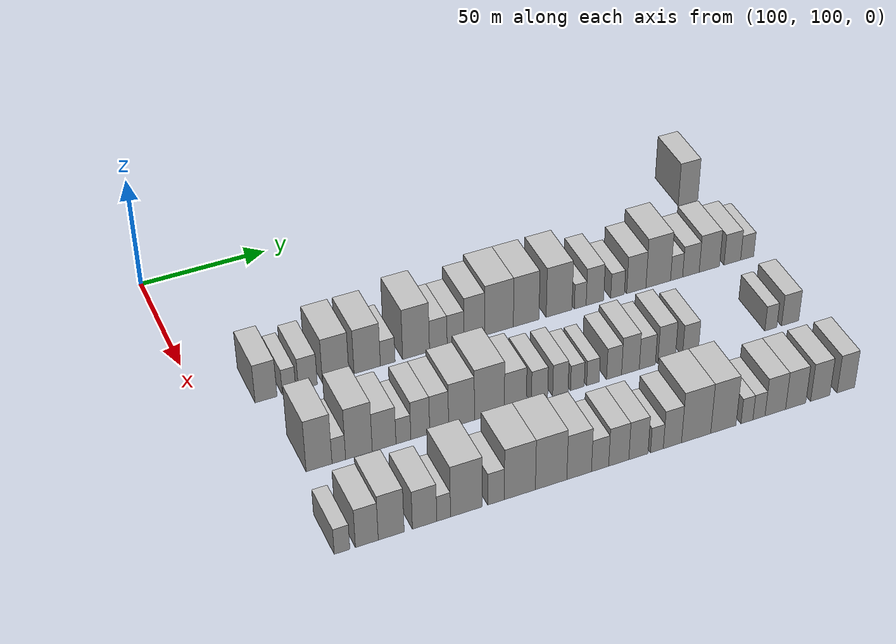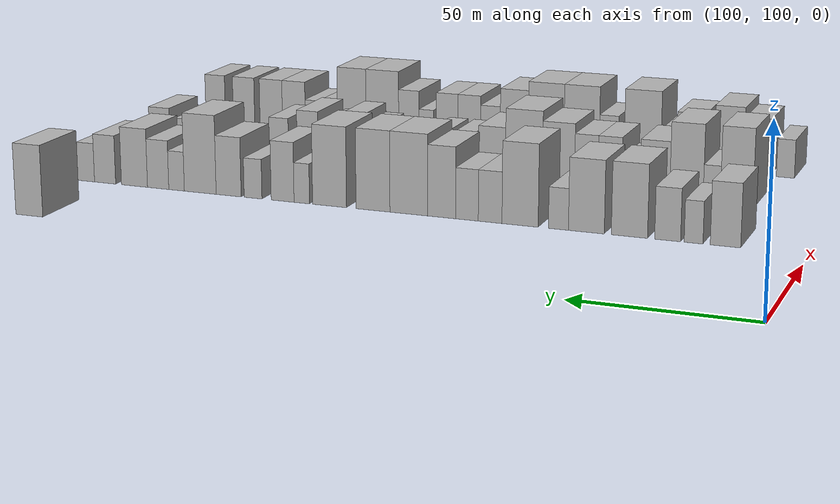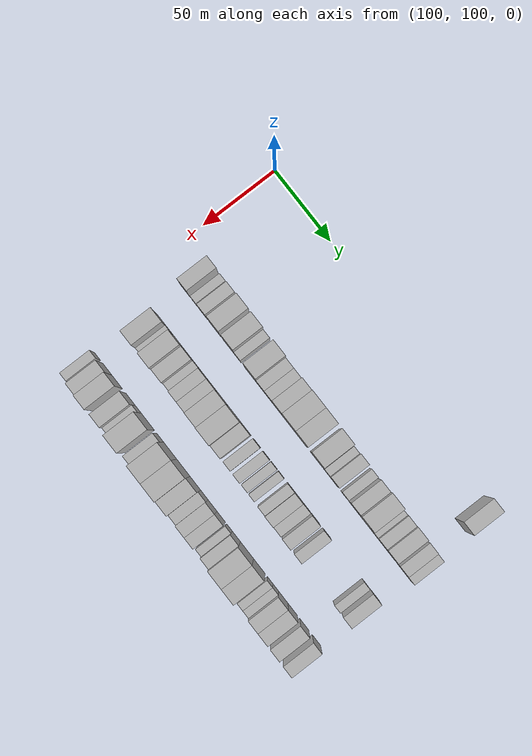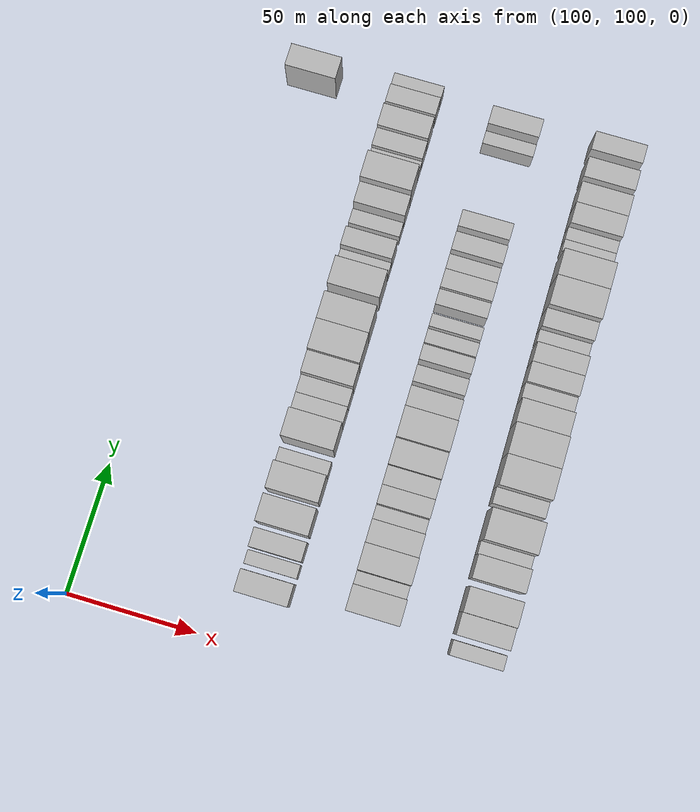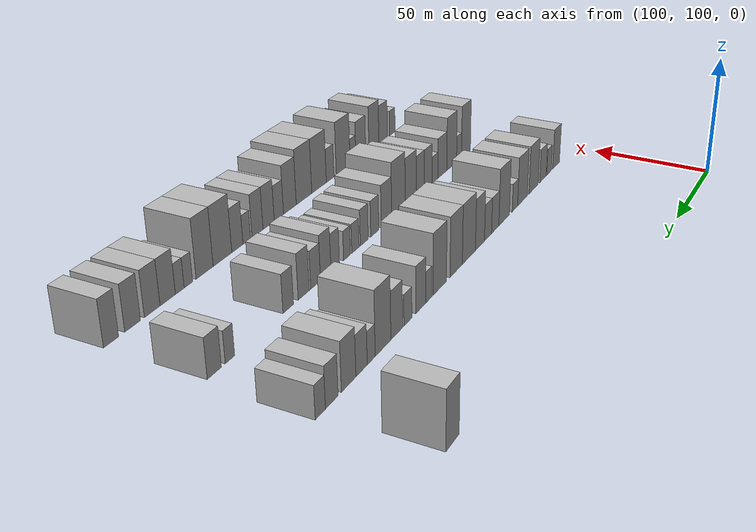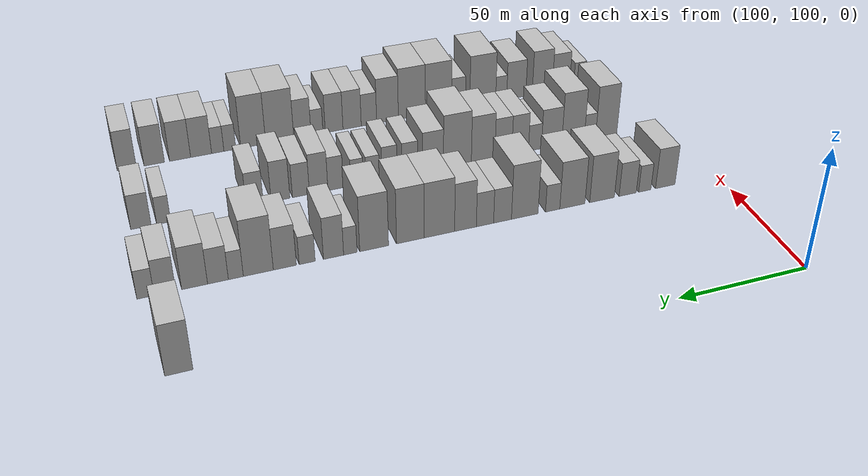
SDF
<sdf version="1.6">
 <world name="default">
  <model name="building_387">
   <static>1</static>
   <pose>130.0000 315.8220 0 0.000000 0.000000 0.000000</pose>
   <link name="link">
    <pose>0 0 10.50 0 0 0</pose>
    <collision name="collision"><geometry><box><size>20.0000 8.8836 21.0000</size></box></geometry></collision>
    <visual name="visual">
     <cast_shadows>0</cast_shadows>
     <geometry><box><size>20.0000 8.8836 21.0000</size></box></geometry>
     <material>
      <script>
       <uri>model://HANNAS_wall/materials/scripts</uri>
       <uri>model://HANNAS_wall/materials/textures</uri>
       <name>vrc/HANNAS_wall</name>
      </script>
     </material>
    </visual>
   </link>
  </model>
  <model name="building_497">
   <static>1</static>
   <pose>170.0000 122.8603 0 0.000000 0.000000 0.000000</pose>
   <link name="link">
    <pose>0 0 9.00 0 0 0</pose>
    <collision name="collision"><geometry><box><size>20.0000 8.3704 18.0000</size></box></geometry></collision>
    <visual name="visual">
     <cast_shadows>0</cast_shadows>
     <geometry><box><size>20.0000 8.3704 18.0000</size></box></geometry>
     <material>
      <script>
       <uri>model://HANNAS_wall/materials/scripts</uri>
       <uri>model://HANNAS_wall/materials/textures</uri>
       <name>vrc/HANNAS_wall</name>
      </script>
     </material>
    </visual>
   </link>
  </model>
  <model name="building_498">
   <static>1</static>
   <pose>170.0000 131.6561 0 0.000000 0.000000 0.000000</pose>
   <link name="link">
    <pose>0 0 6.00 0 0 0</pose>
    <collision name="collision"><geometry><box><size>20.0000 5.2213 12.0000</size></box></geometry></collision>
    <visual name="visual">
     <cast_shadows>0</cast_shadows>
     <geometry><box><size>20.0000 5.2213 12.0000</size></box></geometry>
     <material>
      <script>
       <uri>model://HANNAS_wall/materials/scripts</uri>
       <uri>model://HANNAS_wall/materials/textures</uri>
       <name>vrc/HANNAS_wall</name>
      </script>
     </material>
    </visual>
   </link>
  </model>
  <model name="building_499">
   <static>1</static>
   <pose>170.0000 138.8986 0 0.000000 0.000000 0.000000</pose>
   <link name="link">
    <pose>0 0 7.50 0 0 0</pose>
    <collision name="collision"><geometry><box><size>20.0000 7.2638 15.0000</size></box></geometry></collision>
    <visual name="visual">
     <cast_shadows>0</cast_shadows>
     <geometry><box><size>20.0000 7.2638 15.0000</size></box></geometry>
     <material>
      <script>
       <uri>model://HANNAS_wall/materials/scripts</uri>
       <uri>model://HANNAS_wall/materials/textures</uri>
       <name>vrc/HANNAS_wall</name>
      </script>
     </material>
    </visual>
   </link>
  </model>
  <model name="building_500">
   <static>1</static>
   <pose>170.0000 149.6772 0 0.000000 0.000000 0.000000</pose>
   <link name="link">
    <pose>0 0 10.50 0 0 0</pose>
    <collision name="collision"><geometry><box><size>20.0000 10.2934 21.0000</size></box></geometry></collision>
    <visual name="visual">
     <cast_shadows>0</cast_shadows>
     <geometry><box><size>20.0000 10.2934 21.0000</size></box></geometry>
     <material>
      <script>
       <uri>model://HANNAS_wall/materials/scripts</uri>
       <uri>model://HANNAS_wall/materials/textures</uri>
       <name>vrc/HANNAS_wall</name>
      </script>
     </material>
    </visual>
   </link>
  </model>
  <model name="building_501">
   <static>1</static>
   <pose>170.0000 161.9963 0 0.000000 0.000000 0.000000</pose>
   <link name="link">
    <pose>0 0 10.50 0 0 0</pose>
    <collision name="collision"><geometry><box><size>20.0000 10.3447 21.0000</size></box></geometry></collision>
    <visual name="visual">
     <cast_shadows>0</cast_shadows>
     <geometry><box><size>20.0000 10.3447 21.0000</size></box></geometry>
     <material>
      <script>
       <uri>model://HANNAS_wall/materials/scripts</uri>
       <uri>model://HANNAS_wall/materials/textures</uri>
       <name>vrc/HANNAS_wall</name>
      </script>
     </material>
    </visual>
   </link>
  </model>
  <model name="building_502">
   <static>1</static>
   <pose>170.0000 170.0825 0 0.000000 0.000000 0.000000</pose>
   <link name="link">
    <pose>0 0 6.00 0 0 0</pose>
    <collision name="collision"><geometry><box><size>20.0000 5.8277 12.0000</size></box></geometry></collision>
    <visual name="visual">
     <cast_shadows>0</cast_shadows>
     <geometry><box><size>20.0000 5.8277 12.0000</size></box></geometry>
     <material>
      <script>
       <uri>model://HANNAS_wall/materials/scripts</uri>
       <uri>model://HANNAS_wall/materials/textures</uri>
       <name>vrc/HANNAS_wall</name>
      </script>
     </material>
    </visual>
   </link>
  </model>
  <model name="building_503">
   <static>1</static>
   <pose>170.0000 181.3451 0 0.000000 0.000000 0.000000</pose>
   <link name="link">
    <pose>0 0 12.00 0 0 0</pose>
    <collision name="collision"><geometry><box><size>20.0000 10.6977 24.0000</size></box></geometry></collision>
    <visual name="visual">
     <cast_shadows>0</cast_shadows>
     <geometry><box><size>20.0000 10.6977 24.0000</size></box></geometry>
     <material>
      <script>
       <uri>model://HANNAS_wall/materials/scripts</uri>
       <uri>model://HANNAS_wall/materials/textures</uri>
       <name>vrc/HANNAS_wall</name>
      </script>
     </material>
    </visual>
   </link>
  </model>
  <model name="building_504">
   <static>1</static>
   <pose>170.0000 190.2425 0 0.000000 0.000000 0.000000</pose>
   <link name="link">
    <pose>0 0 7.50 0 0 0</pose>
    <collision name="collision"><geometry><box><size>20.0000 7.0971 15.0000</size></box></geometry></collision>
    <visual name="visual">
     <cast_shadows>0</cast_shadows>
     <geometry><box><size>20.0000 7.0971 15.0000</size></box></geometry>
     <material>
      <script>
       <uri>model://HANNAS_wall/materials/scripts</uri>
       <uri>model://HANNAS_wall/materials/textures</uri>
       <name>vrc/HANNAS_wall</name>
      </script>
     </material>
    </visual>
   </link>
  </model>
  <model name="building_505">
   <static>1</static>
   <pose>170.0000 197.1912 0 0.000000 0.000000 0.000000</pose>
   <link name="link">
    <pose>0 0 7.50 0 0 0</pose>
    <collision name="collision"><geometry><box><size>20.0000 6.8003 15.0000</size></box></geometry></collision>
    <visual name="visual">
     <cast_shadows>0</cast_shadows>
     <geometry><box><size>20.0000 6.8003 15.0000</size></box></geometry>
     <material>
      <script>
       <uri>model://HANNAS_wall/materials/scripts</uri>
       <uri>model://HANNAS_wall/materials/textures</uri>
       <name>vrc/HANNAS_wall</name>
      </script>
     </material>
    </visual>
   </link>
  </model>
  <model name="building_506">
   <static>1</static>
   <pose>170.0000 204.8311 0 0.000000 0.000000 0.000000</pose>
   <link name="link">
    <pose>0 0 10.50 0 0 0</pose>
    <collision name="collision"><geometry><box><size>20.0000 8.4793 21.0000</size></box></geometry></collision>
    <visual name="visual">
     <cast_shadows>0</cast_shadows>
     <geometry><box><size>20.0000 8.4793 21.0000</size></box></geometry>
     <material>
      <script>
       <uri>model://HANNAS_wall/materials/scripts</uri>
       <uri>model://HANNAS_wall/materials/textures</uri>
       <name>vrc/HANNAS_wall</name>
      </script>
     </material>
    </visual>
   </link>
  </model>
  <model name="building_507">
   <static>1</static>
   <pose>170.0000 214.9065 0 0.000000 0.000000 0.000000</pose>
   <link name="link">
    <pose>0 0 12.00 0 0 0</pose>
    <collision name="collision"><geometry><box><size>20.0000 11.6716 24.0000</size></box></geometry></collision>
    <visual name="visual">
     <cast_shadows>0</cast_shadows>
     <geometry><box><size>20.0000 11.6716 24.0000</size></box></geometry>
     <material>
      <script>
       <uri>model://HANNAS_wall/materials/scripts</uri>
       <uri>model://HANNAS_wall/materials/textures</uri>
       <name>vrc/HANNAS_wall</name>
      </script>
     </material>
    </visual>
   </link>
  </model>
  <model name="building_508">
   <static>1</static>
   <pose>170.0000 226.0292 0 0.000000 0.000000 0.000000</pose>
   <link name="link">
    <pose>0 0 12.00 0 0 0</pose>
    <collision name="collision"><geometry><box><size>20.0000 10.5738 24.0000</size></box></geometry></collision>
    <visual name="visual">
     <cast_shadows>0</cast_shadows>
     <geometry><box><size>20.0000 10.5738 24.0000</size></box></geometry>
     <material>
      <script>
       <uri>model://HANNAS_wall/materials/scripts</uri>
       <uri>model://HANNAS_wall/materials/textures</uri>
       <name>vrc/HANNAS_wall</name>
      </script>
     </material>
    </visual>
   </link>
  </model>
  <model name="building_509">
   <static>1</static>
   <pose>170.0000 239.6942 0 0.000000 0.000000 0.000000</pose>
   <link name="link">
    <pose>0 0 12.00 0 0 0</pose>
    <collision name="collision"><geometry><box><size>20.0000 10.7561 24.0000</size></box></geometry></collision>
    <visual name="visual">
     <cast_shadows>0</cast_shadows>
     <geometry><box><size>20.0000 10.7561 24.0000</size></box></geometry>
     <material>
      <script>
       <uri>model://HANNAS_wall/materials/scripts</uri>
       <uri>model://HANNAS_wall/materials/textures</uri>
       <name>vrc/HANNAS_wall</name>
      </script>
     </material>
    </visual>
   </link>
  </model>
  <model name="building_510">
   <static>1</static>
   <pose>170.0000 248.5505 0 0.000000 0.000000 0.000000</pose>
   <link name="link">
    <pose>0 0 6.00 0 0 0</pose>
    <collision name="collision"><geometry><box><size>20.0000 4.9565 12.0000</size></box></geometry></collision>
    <visual name="visual">
     <cast_shadows>0</cast_shadows>
     <geometry><box><size>20.0000 4.9565 12.0000</size></box></geometry>
     <material>
      <script>
       <uri>model://HANNAS_wall/materials/scripts</uri>
       <uri>model://HANNAS_wall/materials/textures</uri>
       <name>vrc/HANNAS_wall</name>
      </script>
     </material>
    </visual>
   </link>
  </model>
  <model name="building_511">
   <static>1</static>
   <pose>170.0000 254.7235 0 0.000000 0.000000 0.000000</pose>
   <link name="link">
    <pose>0 0 9.00 0 0 0</pose>
    <collision name="collision"><geometry><box><size>20.0000 7.3895 18.0000</size></box></geometry></collision>
    <visual name="visual">
     <cast_shadows>0</cast_shadows>
     <geometry><box><size>20.0000 7.3895 18.0000</size></box></geometry>
     <material>
      <script>
       <uri>model://HANNAS_wall/materials/scripts</uri>
       <uri>model://HANNAS_wall/materials/textures</uri>
       <name>vrc/HANNAS_wall</name>
      </script>
     </material>
    </visual>
   </link>
  </model>
  <model name="building_512">
   <static>1</static>
   <pose>170.0000 264.3219 0 0.000000 0.000000 0.000000</pose>
   <link name="link">
    <pose>0 0 6.00 0 0 0</pose>
    <collision name="collision"><geometry><box><size>20.0000 5.8072 12.0000</size></box></geometry></collision>
    <visual name="visual">
     <cast_shadows>0</cast_shadows>
     <geometry><box><size>20.0000 5.8072 12.0000</size></box></geometry>
     <material>
      <script>
       <uri>model://HANNAS_wall/materials/scripts</uri>
       <uri>model://HANNAS_wall/materials/textures</uri>
       <name>vrc/HANNAS_wall</name>
      </script>
     </material>
    </visual>
   </link>
  </model>
  <model name="building_513">
   <static>1</static>
   <pose>170.0000 272.3450 0 0.000000 0.000000 0.000000</pose>
   <link name="link">
    <pose>0 0 9.00 0 0 0</pose>
    <collision name="collision"><geometry><box><size>20.0000 8.2391 18.0000</size></box></geometry></collision>
    <visual name="visual">
     <cast_shadows>0</cast_shadows>
     <geometry><box><size>20.0000 8.2391 18.0000</size></box></geometry>
     <material>
      <script>
       <uri>model://HANNAS_wall/materials/scripts</uri>
       <uri>model://HANNAS_wall/materials/textures</uri>
       <name>vrc/HANNAS_wall</name>
      </script>
     </material>
    </visual>
   </link>
  </model>
  <model name="building_514">
   <static>1</static>
   <pose>170.0000 281.7713 0 0.000000 0.000000 0.000000</pose>
   <link name="link">
    <pose>0 0 12.00 0 0 0</pose>
    <collision name="collision"><geometry><box><size>20.0000 10.6135 24.0000</size></box></geometry></collision>
    <visual name="visual">
     <cast_shadows>0</cast_shadows>
     <geometry><box><size>20.0000 10.6135 24.0000</size></box></geometry>
     <material>
      <script>
       <uri>model://HANNAS_wall/materials/scripts</uri>
       <uri>model://HANNAS_wall/materials/textures</uri>
       <name>vrc/HANNAS_wall</name>
      </script>
     </material>
    </visual>
   </link>
  </model>
  <model name="building_515">
   <static>1</static>
   <pose>170.0000 289.7008 0 0.000000 0.000000 0.000000</pose>
   <link name="link">
    <pose>0 0 6.00 0 0 0</pose>
    <collision name="collision"><geometry><box><size>20.0000 5.2456 12.0000</size></box></geometry></collision>
    <visual name="visual">
     <cast_shadows>0</cast_shadows>
     <geometry><box><size>20.0000 5.2456 12.0000</size></box></geometry>
     <material>
      <script>
       <uri>model://HANNAS_wall/materials/scripts</uri>
       <uri>model://HANNAS_wall/materials/textures</uri>
       <name>vrc/HANNAS_wall</name>
      </script>
     </material>
    </visual>
   </link>
  </model>
  <model name="building_516">
   <static>1</static>
   <pose>170.0000 295.9312 0 0.000000 0.000000 0.000000</pose>
   <link name="link">
    <pose>0 0 7.50 0 0 0</pose>
    <collision name="collision"><geometry><box><size>20.0000 7.2151 15.0000</size></box></geometry></collision>
    <visual name="visual">
     <cast_shadows>0</cast_shadows>
     <geometry><box><size>20.0000 7.2151 15.0000</size></box></geometry>
     <material>
      <script>
       <uri>model://HANNAS_wall/materials/scripts</uri>
       <uri>model://HANNAS_wall/materials/textures</uri>
       <name>vrc/HANNAS_wall</name>
      </script>
     </material>
    </visual>
   </link>
  </model>
  <model name="building_517">
   <static>1</static>
   <pose>170.0000 303.9941 0 0.000000 0.000000 0.000000</pose>
   <link name="link">
    <pose>0 0 9.00 0 0 0</pose>
    <collision name="collision"><geometry><box><size>20.0000 8.9107 18.0000</size></box></geometry></collision>
    <visual name="visual">
     <cast_shadows>0</cast_shadows>
     <geometry><box><size>20.0000 8.9107 18.0000</size></box></geometry>
     <material>
      <script>
       <uri>model://HANNAS_wall/materials/scripts</uri>
       <uri>model://HANNAS_wall/materials/textures</uri>
       <name>vrc/HANNAS_wall</name>
      </script>
     </material>
    </visual>
   </link>
  </model>
  <model name="building_518">
   <static>1</static>
   <pose>170.0000 314.1108 0 0.000000 0.000000 0.000000</pose>
   <link name="link">
    <pose>0 0 7.50 0 0 0</pose>
    <collision name="collision"><geometry><box><size>20.0000 7.3228 15.0000</size></box></geometry></collision>
    <visual name="visual">
     <cast_shadows>0</cast_shadows>
     <geometry><box><size>20.0000 7.3228 15.0000</size></box></geometry>
     <material>
      <script>
       <uri>model://HANNAS_wall/materials/scripts</uri>
       <uri>model://HANNAS_wall/materials/textures</uri>
       <name>vrc/HANNAS_wall</name>
      </script>
     </material>
    </visual>
   </link>
  </model>
  <model name="building_519">
   <static>1</static>
   <pose>170.0000 320.6827 0 0.000000 0.000000 0.000000</pose>
   <link name="link">
    <pose>0 0 6.00 0 0 0</pose>
    <collision name="collision"><geometry><box><size>20.0000 5.8210 12.0000</size></box></geometry></collision>
    <visual name="visual">
     <cast_shadows>0</cast_shadows>
     <geometry><box><size>20.0000 5.8210 12.0000</size></box></geometry>
     <material>
      <script>
       <uri>model://HANNAS_wall/materials/scripts</uri>
       <uri>model://HANNAS_wall/materials/textures</uri>
       <name>vrc/HANNAS_wall</name>
      </script>
     </material>
    </visual>
   </link>
  </model>
  <model name="building_635">
   <static>1</static>
   <pose>210.0000 128.4383 0 0.000000 0.000000 0.000000</pose>
   <link name="link">
    <pose>0 0 12.00 0 0 0</pose>
    <collision name="collision"><geometry><box><size>20.0000 9.6128 24.0000</size></box></geometry></collision>
    <visual name="visual">
     <cast_shadows>0</cast_shadows>
     <geometry><box><size>20.0000 9.6128 24.0000</size></box></geometry>
     <material>
      <script>
       <uri>model://HANNAS_wall/materials/scripts</uri>
       <uri>model://HANNAS_wall/materials/textures</uri>
       <name>vrc/HANNAS_wall</name>
      </script>
     </material>
    </visual>
   </link>
  </model>
  <model name="building_636">
   <static>1</static>
   <pose>210.0000 135.7824 0 0.000000 0.000000 0.000000</pose>
   <link name="link">
    <pose>0 0 6.00 0 0 0</pose>
    <collision name="collision"><geometry><box><size>20.0000 5.0754 12.0000</size></box></geometry></collision>
    <visual name="visual">
     <cast_shadows>0</cast_shadows>
     <geometry><box><size>20.0000 5.0754 12.0000</size></box></geometry>
     <material>
      <script>
       <uri>model://HANNAS_wall/materials/scripts</uri>
       <uri>model://HANNAS_wall/materials/textures</uri>
       <name>vrc/HANNAS_wall</name>
      </script>
     </material>
    </visual>
   </link>
  </model>
  <model name="building_637">
   <static>1</static>
   <pose>210.0000 143.3245 0 0.000000 0.000000 0.000000</pose>
   <link name="link">
    <pose>0 0 12.00 0 0 0</pose>
    <collision name="collision"><geometry><box><size>20.0000 10.0088 24.0000</size></box></geometry></collision>
    <visual name="visual">
     <cast_shadows>0</cast_shadows>
     <geometry><box><size>20.0000 10.0088 24.0000</size></box></geometry>
     <material>
      <script>
       <uri>model://HANNAS_wall/materials/scripts</uri>
       <uri>model://HANNAS_wall/materials/textures</uri>
       <name>vrc/HANNAS_wall</name>
      </script>
     </material>
    </visual>
   </link>
  </model>
  <model name="building_638">
   <static>1</static>
   <pose>210.0000 152.8136 0 0.000000 0.000000 0.000000</pose>
   <link name="link">
    <pose>0 0 9.00 0 0 0</pose>
    <collision name="collision"><geometry><box><size>20.0000 8.9693 18.0000</size></box></geometry></collision>
    <visual name="visual">
     <cast_shadows>0</cast_shadows>
     <geometry><box><size>20.0000 8.9693 18.0000</size></box></geometry>
     <material>
      <script>
       <uri>model://HANNAS_wall/materials/scripts</uri>
       <uri>model://HANNAS_wall/materials/textures</uri>
       <name>vrc/HANNAS_wall</name>
      </script>
     </material>
    </visual>
   </link>
  </model>
  <model name="building_639">
   <static>1</static>
   <pose>210.0000 160.1280 0 0.000000 0.000000 0.000000</pose>
   <link name="link">
    <pose>0 0 6.00 0 0 0</pose>
    <collision name="collision"><geometry><box><size>20.0000 5.6595 12.0000</size></box></geometry></collision>
    <visual name="visual">
     <cast_shadows>0</cast_shadows>
     <geometry><box><size>20.0000 5.6595 12.0000</size></box></geometry>
     <material>
      <script>
       <uri>model://HANNAS_wall/materials/scripts</uri>
       <uri>model://HANNAS_wall/materials/textures</uri>
       <name>vrc/HANNAS_wall</name>
      </script>
     </material>
    </visual>
   </link>
  </model>
  <model name="building_640">
   <static>1</static>
   <pose>210.0000 166.5603 0 0.000000 0.000000 0.000000</pose>
   <link name="link">
    <pose>0 0 9.00 0 0 0</pose>
    <collision name="collision"><geometry><box><size>20.0000 7.2052 18.0000</size></box></geometry></collision>
    <visual name="visual">
     <cast_shadows>0</cast_shadows>
     <geometry><box><size>20.0000 7.2052 18.0000</size></box></geometry>
     <material>
      <script>
       <uri>model://HANNAS_wall/materials/scripts</uri>
       <uri>model://HANNAS_wall/materials/textures</uri>
       <name>vrc/HANNAS_wall</name>
      </script>
     </material>
    </visual>
   </link>
  </model>
  <model name="building_641">
   <static>1</static>
   <pose>210.0000 173.8023 0 0.000000 0.000000 0.000000</pose>
   <link name="link">
    <pose>0 0 9.00 0 0 0</pose>
    <collision name="collision"><geometry><box><size>20.0000 7.2788 18.0000</size></box></geometry></collision>
    <visual name="visual">
     <cast_shadows>0</cast_shadows>
     <geometry><box><size>20.0000 7.2788 18.0000</size></box></geometry>
     <material>
      <script>
       <uri>model://HANNAS_wall/materials/scripts</uri>
       <uri>model://HANNAS_wall/materials/textures</uri>
       <name>vrc/HANNAS_wall</name>
      </script>
     </material>
    </visual>
   </link>
  </model>
  <model name="building_642">
   <static>1</static>
   <pose>210.0000 182.4457 0 0.000000 0.000000 0.000000</pose>
   <link name="link">
    <pose>0 0 10.50 0 0 0</pose>
    <collision name="collision"><geometry><box><size>20.0000 10.0079 21.0000</size></box></geometry></collision>
    <visual name="visual">
     <cast_shadows>0</cast_shadows>
     <geometry><box><size>20.0000 10.0079 21.0000</size></box></geometry>
     <material>
      <script>
       <uri>model://HANNAS_wall/materials/scripts</uri>
       <uri>model://HANNAS_wall/materials/textures</uri>
       <name>vrc/HANNAS_wall</name>
      </script>
     </material>
    </visual>
   </link>
  </model>
  <model name="building_643">
   <static>1</static>
   <pose>210.0000 193.3110 0 0.000000 0.000000 0.000000</pose>
   <link name="link">
    <pose>0 0 12.00 0 0 0</pose>
    <collision name="collision"><geometry><box><size>20.0000 11.7228 24.0000</size></box></geometry></collision>
    <visual name="visual">
     <cast_shadows>0</cast_shadows>
     <geometry><box><size>20.0000 11.7228 24.0000</size></box></geometry>
     <material>
      <script>
       <uri>model://HANNAS_wall/materials/scripts</uri>
       <uri>model://HANNAS_wall/materials/textures</uri>
       <name>vrc/HANNAS_wall</name>
      </script>
     </material>
    </visual>
   </link>
  </model>
  <model name="building_644">
   <static>1</static>
   <pose>210.0000 203.4968 0 0.000000 0.000000 0.000000</pose>
   <link name="link">
    <pose>0 0 9.00 0 0 0</pose>
    <collision name="collision"><geometry><box><size>20.0000 8.6487 18.0000</size></box></geometry></collision>
    <visual name="visual">
     <cast_shadows>0</cast_shadows>
     <geometry><box><size>20.0000 8.6487 18.0000</size></box></geometry>
     <material>
      <script>
       <uri>model://HANNAS_wall/materials/scripts</uri>
       <uri>model://HANNAS_wall/materials/textures</uri>
       <name>vrc/HANNAS_wall</name>
      </script>
     </material>
    </visual>
   </link>
  </model>
  <model name="building_645">
   <static>1</static>
   <pose>210.0000 213.0498 0 0.000000 0.000000 0.000000</pose>
   <link name="link">
    <pose>0 0 7.50 0 0 0</pose>
    <collision name="collision"><geometry><box><size>20.0000 6.4574 15.0000</size></box></geometry></collision>
    <visual name="visual">
     <cast_shadows>0</cast_shadows>
     <geometry><box><size>20.0000 6.4574 15.0000</size></box></geometry>
     <material>
      <script>
       <uri>model://HANNAS_wall/materials/scripts</uri>
       <uri>model://HANNAS_wall/materials/textures</uri>
       <name>vrc/HANNAS_wall</name>
      </script>
     </material>
    </visual>
   </link>
  </model>
  <model name="building_646">
   <static>1</static>
   <pose>210.0000 221.3531 0 0.000000 0.000000 0.000000</pose>
   <link name="link">
    <pose>0 0 7.50 0 0 0</pose>
    <collision name="collision"><geometry><box><size>20.0000 6.1493 15.0000</size></box></geometry></collision>
    <visual name="visual">
     <cast_shadows>0</cast_shadows>
     <geometry><box><size>20.0000 6.1493 15.0000</size></box></geometry>
     <material>
      <script>
       <uri>model://HANNAS_wall/materials/scripts</uri>
       <uri>model://HANNAS_wall/materials/textures</uri>
       <name>vrc/HANNAS_wall</name>
      </script>
     </material>
    </visual>
   </link>
  </model>
  <model name="building_647">
   <static>1</static>
   <pose>210.0000 228.1708 0 0.000000 0.000000 0.000000</pose>
   <link name="link">
    <pose>0 0 6.00 0 0 0</pose>
    <collision name="collision"><geometry><box><size>20.0000 5.4861 12.0000</size></box></geometry></collision>
    <visual name="visual">
     <cast_shadows>0</cast_shadows>
     <geometry><box><size>20.0000 5.4861 12.0000</size></box></geometry>
     <material>
      <script>
       <uri>model://HANNAS_wall/materials/scripts</uri>
       <uri>model://HANNAS_wall/materials/textures</uri>
       <name>vrc/HANNAS_wall</name>
      </script>
     </material>
    </visual>
   </link>
  </model>
  <model name="building_648">
   <static>1</static>
   <pose>210.0000 234.4393 0 0.000000 0.000000 0.000000</pose>
   <link name="link">
    <pose>0 0 6.00 0 0 0</pose>
    <collision name="collision"><geometry><box><size>20.0000 5.0508 12.0000</size></box></geometry></collision>
    <visual name="visual">
     <cast_shadows>0</cast_shadows>
     <geometry><box><size>20.0000 5.0508 12.0000</size></box></geometry>
     <material>
      <script>
       <uri>model://HANNAS_wall/materials/scripts</uri>
       <uri>model://HANNAS_wall/materials/textures</uri>
       <name>vrc/HANNAS_wall</name>
      </script>
     </material>
    </visual>
   </link>
  </model>
  <model name="building_649">
   <static>1</static>
   <pose>210.0000 243.0155 0 0.000000 0.000000 0.000000</pose>
   <link name="link">
    <pose>0 0 7.50 0 0 0</pose>
    <collision name="collision"><geometry><box><size>20.0000 6.1017 15.0000</size></box></geometry></collision>
    <visual name="visual">
     <cast_shadows>0</cast_shadows>
     <geometry><box><size>20.0000 6.1017 15.0000</size></box></geometry>
     <material>
      <script>
       <uri>model://HANNAS_wall/materials/scripts</uri>
       <uri>model://HANNAS_wall/materials/textures</uri>
       <name>vrc/HANNAS_wall</name>
      </script>
     </material>
    </visual>
   </link>
  </model>
  <model name="building_650">
   <static>1</static>
   <pose>210.0000 249.6984 0 0.000000 0.000000 0.000000</pose>
   <link name="link">
    <pose>0 0 9.00 0 0 0</pose>
    <collision name="collision"><geometry><box><size>20.0000 7.2640 18.0000</size></box></geometry></collision>
    <visual name="visual">
     <cast_shadows>0</cast_shadows>
     <geometry><box><size>20.0000 7.2640 18.0000</size></box></geometry>
     <material>
      <script>
       <uri>model://HANNAS_wall/materials/scripts</uri>
       <uri>model://HANNAS_wall/materials/textures</uri>
       <name>vrc/HANNAS_wall</name>
      </script>
     </material>
    </visual>
   </link>
  </model>
  <model name="building_651">
   <static>1</static>
   <pose>210.0000 256.6418 0 0.000000 0.000000 0.000000</pose>
   <link name="link">
    <pose>0 0 7.50 0 0 0</pose>
    <collision name="collision"><geometry><box><size>20.0000 6.6228 15.0000</size></box></geometry></collision>
    <visual name="visual">
     <cast_shadows>0</cast_shadows>
     <geometry><box><size>20.0000 6.6228 15.0000</size></box></geometry>
     <material>
      <script>
       <uri>model://HANNAS_wall/materials/scripts</uri>
       <uri>model://HANNAS_wall/materials/textures</uri>
       <name>vrc/HANNAS_wall</name>
      </script>
     </material>
    </visual>
   </link>
  </model>
  <model name="building_652">
   <static>1</static>
   <pose>210.0000 264.5712 0 0.000000 0.000000 0.000000</pose>
   <link name="link">
    <pose>0 0 9.00 0 0 0</pose>
    <collision name="collision"><geometry><box><size>20.0000 7.2360 18.0000</size></box></geometry></collision>
    <visual name="visual">
     <cast_shadows>0</cast_shadows>
     <geometry><box><size>20.0000 7.2360 18.0000</size></box></geometry>
     <material>
      <script>
       <uri>model://HANNAS_wall/materials/scripts</uri>
       <uri>model://HANNAS_wall/materials/textures</uri>
       <name>vrc/HANNAS_wall</name>
      </script>
     </material>
    </visual>
   </link>
  </model>
  <model name="building_653">
   <static>1</static>
   <pose>210.0000 274.4937 0 0.000000 0.000000 0.000000</pose>
   <link name="link">
    <pose>0 0 7.50 0 0 0</pose>
    <collision name="collision"><geometry><box><size>20.0000 6.6090 15.0000</size></box></geometry></collision>
    <visual name="visual">
     <cast_shadows>0</cast_shadows>
     <geometry><box><size>20.0000 6.6090 15.0000</size></box></geometry>
     <material>
      <script>
       <uri>model://HANNAS_wall/materials/scripts</uri>
       <uri>model://HANNAS_wall/materials/textures</uri>
       <name>vrc/HANNAS_wall</name>
      </script>
     </material>
    </visual>
   </link>
  </model>
  <model name="building_654">
   <static>1</static>
   <pose>210.0000 308.5311 0 0.000000 0.000000 0.000000</pose>
   <link name="link">
    <pose>0 0 6.00 0 0 0</pose>
    <collision name="collision"><geometry><box><size>20.0000 5.1553 12.0000</size></box></geometry></collision>
    <visual name="visual">
     <cast_shadows>0</cast_shadows>
     <geometry><box><size>20.0000 5.1553 12.0000</size></box></geometry>
     <material>
      <script>
       <uri>model://HANNAS_wall/materials/scripts</uri>
       <uri>model://HANNAS_wall/materials/textures</uri>
       <name>vrc/HANNAS_wall</name>
      </script>
     </material>
    </visual>
   </link>
  </model>
  <model name="building_655">
   <static>1</static>
   <pose>210.0000 316.8214 0 0.000000 0.000000 0.000000</pose>
   <link name="link">
    <pose>0 0 7.50 0 0 0</pose>
    <collision name="collision"><geometry><box><size>20.0000 7.4251 15.0000</size></box></geometry></collision>
    <visual name="visual">
     <cast_shadows>0</cast_shadows>
     <geometry><box><size>20.0000 7.4251 15.0000</size></box></geometry>
     <material>
      <script>
       <uri>model://HANNAS_wall/materials/scripts</uri>
       <uri>model://HANNAS_wall/materials/textures</uri>
       <name>vrc/HANNAS_wall</name>
      </script>
     </material>
    </visual>
   </link>
  </model>
  <model name="building_764">
   <static>1</static>
   <pose>250.0000 121.8187 0 0.000000 0.000000 0.000000</pose>
   <link name="link">
    <pose>0 0 6.00 0 0 0</pose>
    <collision name="collision"><geometry><box><size>20.0000 5.5731 12.0000</size></box></geometry></collision>
    <visual name="visual">
     <cast_shadows>0</cast_shadows>
     <geometry><box><size>20.0000 5.5731 12.0000</size></box></geometry>
     <material>
      <script>
       <uri>model://HANNAS_wall/materials/scripts</uri>
       <uri>model://HANNAS_wall/materials/textures</uri>
       <name>vrc/HANNAS_wall</name>
      </script>
     </material>
    </visual>
   </link>
  </model>
  <model name="building_765">
   <static>1</static>
   <pose>250.0000 130.7166 0 0.000000 0.000000 0.000000</pose>
   <link name="link">
    <pose>0 0 9.00 0 0 0</pose>
    <collision name="collision"><geometry><box><size>20.0000 8.2226 18.0000</size></box></geometry></collision>
    <visual name="visual">
     <cast_shadows>0</cast_shadows>
     <geometry><box><size>20.0000 8.2226 18.0000</size></box></geometry>
     <material>
      <script>
       <uri>model://HANNAS_wall/materials/scripts</uri>
       <uri>model://HANNAS_wall/materials/textures</uri>
       <name>vrc/HANNAS_wall</name>
      </script>
     </material>
    </visual>
   </link>
  </model>
  <model name="building_766">
   <static>1</static>
   <pose>250.0000 139.5265 0 0.000000 0.000000 0.000000</pose>
   <link name="link">
    <pose>0 0 10.50 0 0 0</pose>
    <collision name="collision"><geometry><box><size>20.0000 9.3973 21.0000</size></box></geometry></collision>
    <visual name="visual">
     <cast_shadows>0</cast_shadows>
     <geometry><box><size>20.0000 9.3973 21.0000</size></box></geometry>
     <material>
      <script>
       <uri>model://HANNAS_wall/materials/scripts</uri>
       <uri>model://HANNAS_wall/materials/textures</uri>
       <name>vrc/HANNAS_wall</name>
      </script>
     </material>
    </visual>
   </link>
  </model>
  <model name="building_767">
   <static>1</static>
   <pose>250.0000 151.6856 0 0.000000 0.000000 0.000000</pose>
   <link name="link">
    <pose>0 0 9.00 0 0 0</pose>
    <collision name="collision"><geometry><box><size>20.0000 8.9208 18.0000</size></box></geometry></collision>
    <visual name="visual">
     <cast_shadows>0</cast_shadows>
     <geometry><box><size>20.0000 8.9208 18.0000</size></box></geometry>
     <material>
      <script>
       <uri>model://HANNAS_wall/materials/scripts</uri>
       <uri>model://HANNAS_wall/materials/textures</uri>
       <name>vrc/HANNAS_wall</name>
      </script>
     </material>
    </visual>
   </link>
  </model>
  <model name="building_768">
   <static>1</static>
   <pose>250.0000 158.6774 0 0.000000 0.000000 0.000000</pose>
   <link name="link">
    <pose>0 0 6.00 0 0 0</pose>
    <collision name="collision"><geometry><box><size>20.0000 5.0629 12.0000</size></box></geometry></collision>
    <visual name="visual">
     <cast_shadows>0</cast_shadows>
     <geometry><box><size>20.0000 5.0629 12.0000</size></box></geometry>
     <material>
      <script>
       <uri>model://HANNAS_wall/materials/scripts</uri>
       <uri>model://HANNAS_wall/materials/textures</uri>
       <name>vrc/HANNAS_wall</name>
      </script>
     </material>
    </visual>
   </link>
  </model>
  <model name="building_769">
   <static>1</static>
   <pose>250.0000 167.1284 0 0.000000 0.000000 0.000000</pose>
   <link name="link">
    <pose>0 0 12.00 0 0 0</pose>
    <collision name="collision"><geometry><box><size>20.0000 11.8392 24.0000</size></box></geometry></collision>
    <visual name="visual">
     <cast_shadows>0</cast_shadows>
     <geometry><box><size>20.0000 11.8392 24.0000</size></box></geometry>
     <material>
      <script>
       <uri>model://HANNAS_wall/materials/scripts</uri>
       <uri>model://HANNAS_wall/materials/textures</uri>
       <name>vrc/HANNAS_wall</name>
      </script>
     </material>
    </visual>
   </link>
  </model>
  <model name="building_770">
   <static>1</static>
   <pose>250.0000 178.1547 0 0.000000 0.000000 0.000000</pose>
   <link name="link">
    <pose>0 0 7.50 0 0 0</pose>
    <collision name="collision"><geometry><box><size>20.0000 6.2134 15.0000</size></box></geometry></collision>
    <visual name="visual">
     <cast_shadows>0</cast_shadows>
     <geometry><box><size>20.0000 6.2134 15.0000</size></box></geometry>
     <material>
      <script>
       <uri>model://HANNAS_wall/materials/scripts</uri>
       <uri>model://HANNAS_wall/materials/textures</uri>
       <name>vrc/HANNAS_wall</name>
      </script>
     </material>
    </visual>
   </link>
  </model>
  <model name="building_771">
   <static>1</static>
   <pose>250.0000 187.1185 0 0.000000 0.000000 0.000000</pose>
   <link name="link">
    <pose>0 0 12.00 0 0 0</pose>
    <collision name="collision"><geometry><box><size>20.0000 11.7142 24.0000</size></box></geometry></collision>
    <visual name="visual">
     <cast_shadows>0</cast_shadows>
     <geometry><box><size>20.0000 11.7142 24.0000</size></box></geometry>
     <material>
      <script>
       <uri>model://HANNAS_wall/materials/scripts</uri>
       <uri>model://HANNAS_wall/materials/textures</uri>
       <name>vrc/HANNAS_wall</name>
      </script>
     </material>
    </visual>
   </link>
  </model>
  <model name="building_772">
   <static>1</static>
   <pose>250.0000 198.9604 0 0.000000 0.000000 0.000000</pose>
   <link name="link">
    <pose>0 0 12.00 0 0 0</pose>
    <collision name="collision"><geometry><box><size>20.0000 11.9694 24.0000</size></box></geometry></collision>
    <visual name="visual">
     <cast_shadows>0</cast_shadows>
     <geometry><box><size>20.0000 11.9694 24.0000</size></box></geometry>
     <material>
      <script>
       <uri>model://HANNAS_wall/materials/scripts</uri>
       <uri>model://HANNAS_wall/materials/textures</uri>
       <name>vrc/HANNAS_wall</name>
      </script>
     </material>
    </visual>
   </link>
  </model>
  <model name="building_773">
   <static>1</static>
   <pose>250.0000 209.6878 0 0.000000 0.000000 0.000000</pose>
   <link name="link">
    <pose>0 0 10.50 0 0 0</pose>
    <collision name="collision"><geometry><box><size>20.0000 9.4854 21.0000</size></box></geometry></collision>
    <visual name="visual">
     <cast_shadows>0</cast_shadows>
     <geometry><box><size>20.0000 9.4854 21.0000</size></box></geometry>
     <material>
      <script>
       <uri>model://HANNAS_wall/materials/scripts</uri>
       <uri>model://HANNAS_wall/materials/textures</uri>
       <name>vrc/HANNAS_wall</name>
      </script>
     </material>
    </visual>
   </link>
  </model>
  <model name="building_774">
   <static>1</static>
   <pose>250.0000 217.7660 0 0.000000 0.000000 0.000000</pose>
   <link name="link">
    <pose>0 0 7.50 0 0 0</pose>
    <collision name="collision"><geometry><box><size>20.0000 6.6710 15.0000</size></box></geometry></collision>
    <visual name="visual">
     <cast_shadows>0</cast_shadows>
     <geometry><box><size>20.0000 6.6710 15.0000</size></box></geometry>
     <material>
      <script>
       <uri>model://HANNAS_wall/materials/scripts</uri>
       <uri>model://HANNAS_wall/materials/textures</uri>
       <name>vrc/HANNAS_wall</name>
      </script>
     </material>
    </visual>
   </link>
  </model>
  <model name="building_775">
   <static>1</static>
   <pose>250.0000 225.0281 0 0.000000 0.000000 0.000000</pose>
   <link name="link">
    <pose>0 0 9.00 0 0 0</pose>
    <collision name="collision"><geometry><box><size>20.0000 7.8532 18.0000</size></box></geometry></collision>
    <visual name="visual">
     <cast_shadows>0</cast_shadows>
     <geometry><box><size>20.0000 7.8532 18.0000</size></box></geometry>
     <material>
      <script>
       <uri>model://HANNAS_wall/materials/scripts</uri>
       <uri>model://HANNAS_wall/materials/textures</uri>
       <name>vrc/HANNAS_wall</name>
      </script>
     </material>
    </visual>
   </link>
  </model>
  <model name="building_776">
   <static>1</static>
   <pose>250.0000 232.7150 0 0.000000 0.000000 0.000000</pose>
   <link name="link">
    <pose>0 0 9.00 0 0 0</pose>
    <collision name="collision"><geometry><box><size>20.0000 7.5206 18.0000</size></box></geometry></collision>
    <visual name="visual">
     <cast_shadows>0</cast_shadows>
     <geometry><box><size>20.0000 7.5206 18.0000</size></box></geometry>
     <material>
      <script>
       <uri>model://HANNAS_wall/materials/scripts</uri>
       <uri>model://HANNAS_wall/materials/textures</uri>
       <name>vrc/HANNAS_wall</name>
      </script>
     </material>
    </visual>
   </link>
  </model>
  <model name="building_777">
   <static>1</static>
   <pose>250.0000 239.9937 0 0.000000 0.000000 0.000000</pose>
   <link name="link">
    <pose>0 0 6.00 0 0 0</pose>
    <collision name="collision"><geometry><box><size>20.0000 5.0370 12.0000</size></box></geometry></collision>
    <visual name="visual">
     <cast_shadows>0</cast_shadows>
     <geometry><box><size>20.0000 5.0370 12.0000</size></box></geometry>
     <material>
      <script>
       <uri>model://HANNAS_wall/materials/scripts</uri>
       <uri>model://HANNAS_wall/materials/textures</uri>
       <name>vrc/HANNAS_wall</name>
      </script>
     </material>
    </visual>
   </link>
  </model>
  <model name="building_778">
   <static>1</static>
   <pose>250.0000 246.1237 0 0.000000 0.000000 0.000000</pose>
   <link name="link">
    <pose>0 0 9.00 0 0 0</pose>
    <collision name="collision"><geometry><box><size>20.0000 7.2230 18.0000</size></box></geometry></collision>
    <visual name="visual">
     <cast_shadows>0</cast_shadows>
     <geometry><box><size>20.0000 7.2230 18.0000</size></box></geometry>
     <material>
      <script>
       <uri>model://HANNAS_wall/materials/scripts</uri>
       <uri>model://HANNAS_wall/materials/textures</uri>
       <name>vrc/HANNAS_wall</name>
      </script>
     </material>
    </visual>
   </link>
  </model>
  <model name="building_779">
   <static>1</static>
   <pose>250.0000 255.5714 0 0.000000 0.000000 0.000000</pose>
   <link name="link">
    <pose>0 0 12.00 0 0 0</pose>
    <collision name="collision"><geometry><box><size>20.0000 11.6723 24.0000</size></box></geometry></collision>
    <visual name="visual">
     <cast_shadows>0</cast_shadows>
     <geometry><box><size>20.0000 11.6723 24.0000</size></box></geometry>
     <material>
      <script>
       <uri>model://HANNAS_wall/materials/scripts</uri>
       <uri>model://HANNAS_wall/materials/textures</uri>
       <name>vrc/HANNAS_wall</name>
      </script>
     </material>
    </visual>
   </link>
  </model>
  <model name="building_780">
   <static>1</static>
   <pose>250.0000 266.5282 0 0.000000 0.000000 0.000000</pose>
   <link name="link">
    <pose>0 0 12.00 0 0 0</pose>
    <collision name="collision"><geometry><box><size>20.0000 10.2413 24.0000</size></box></geometry></collision>
    <visual name="visual">
     <cast_shadows>0</cast_shadows>
     <geometry><box><size>20.0000 10.2413 24.0000</size></box></geometry>
     <material>
      <script>
       <uri>model://HANNAS_wall/materials/scripts</uri>
       <uri>model://HANNAS_wall/materials/textures</uri>
       <name>vrc/HANNAS_wall</name>
      </script>
     </material>
    </visual>
   </link>
  </model>
  <model name="building_781">
   <static>1</static>
   <pose>250.0000 276.0712 0 0.000000 0.000000 0.000000</pose>
   <link name="link">
    <pose>0 0 6.00 0 0 0</pose>
    <collision name="collision"><geometry><box><size>20.0000 4.8447 12.0000</size></box></geometry></collision>
    <visual name="visual">
     <cast_shadows>0</cast_shadows>
     <geometry><box><size>20.0000 4.8447 12.0000</size></box></geometry>
     <material>
      <script>
       <uri>model://HANNAS_wall/materials/scripts</uri>
       <uri>model://HANNAS_wall/materials/textures</uri>
       <name>vrc/HANNAS_wall</name>
      </script>
     </material>
    </visual>
   </link>
  </model>
  <model name="building_782">
   <static>1</static>
   <pose>250.0000 280.9710 0 0.000000 0.000000 0.000000</pose>
   <link name="link">
    <pose>0 0 6.00 0 0 0</pose>
    <collision name="collision"><geometry><box><size>20.0000 4.9549 12.0000</size></box></geometry></collision>
    <visual name="visual">
     <cast_shadows>0</cast_shadows>
     <geometry><box><size>20.0000 4.9549 12.0000</size></box></geometry>
     <material>
      <script>
       <uri>model://HANNAS_wall/materials/scripts</uri>
       <uri>model://HANNAS_wall/materials/textures</uri>
       <name>vrc/HANNAS_wall</name>
      </script>
     </material>
    </visual>
   </link>
  </model>
  <model name="building_783">
   <static>1</static>
   <pose>250.0000 287.6607 0 0.000000 0.000000 0.000000</pose>
   <link name="link">
    <pose>0 0 9.00 0 0 0</pose>
    <collision name="collision"><geometry><box><size>20.0000 8.4246 18.0000</size></box></geometry></collision>
    <visual name="visual">
     <cast_shadows>0</cast_shadows>
     <geometry><box><size>20.0000 8.4246 18.0000</size></box></geometry>
     <material>
      <script>
       <uri>model://HANNAS_wall/materials/scripts</uri>
       <uri>model://HANNAS_wall/materials/textures</uri>
       <name>vrc/HANNAS_wall</name>
      </script>
     </material>
    </visual>
   </link>
  </model>
  <model name="building_784">
   <static>1</static>
   <pose>250.0000 296.0469 0 0.000000 0.000000 0.000000</pose>
   <link name="link">
    <pose>0 0 9.00 0 0 0</pose>
    <collision name="collision"><geometry><box><size>20.0000 8.3477 18.0000</size></box></geometry></collision>
    <visual name="visual">
     <cast_shadows>0</cast_shadows>
     <geometry><box><size>20.0000 8.3477 18.0000</size></box></geometry>
     <material>
      <script>
       <uri>model://HANNAS_wall/materials/scripts</uri>
       <uri>model://HANNAS_wall/materials/textures</uri>
       <name>vrc/HANNAS_wall</name>
      </script>
     </material>
    </visual>
   </link>
  </model>
  <model name="building_785">
   <static>1</static>
   <pose>250.0000 306.2286 0 0.000000 0.000000 0.000000</pose>
   <link name="link">
    <pose>0 0 9.00 0 0 0</pose>
    <collision name="collision"><geometry><box><size>20.0000 8.0159 18.0000</size></box></geometry></collision>
    <visual name="visual">
     <cast_shadows>0</cast_shadows>
     <geometry><box><size>20.0000 8.0159 18.0000</size></box></geometry>
     <material>
      <script>
       <uri>model://HANNAS_wall/materials/scripts</uri>
       <uri>model://HANNAS_wall/materials/textures</uri>
       <name>vrc/HANNAS_wall</name>
      </script>
     </material>
    </visual>
   </link>
  </model>
  <model name="building_786">
   <static>1</static>
   <pose>250.0000 316.9375 0 0.000000 0.000000 0.000000</pose>
   <link name="link">
    <pose>0 0 9.00 0 0 0</pose>
    <collision name="collision"><geometry><box><size>20.0000 7.4018 18.0000</size></box></geometry></collision>
    <visual name="visual">
     <cast_shadows>0</cast_shadows>
     <geometry><box><size>20.0000 7.4018 18.0000</size></box></geometry>
     <material>
      <script>
       <uri>model://HANNAS_wall/materials/scripts</uri>
       <uri>model://HANNAS_wall/materials/textures</uri>
       <name>vrc/HANNAS_wall</name>
      </script>
     </material>
    </visual>
   </link>
  </model>
 </world>
</sdf>
